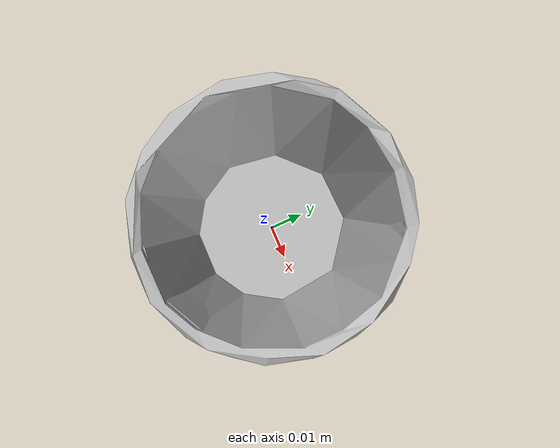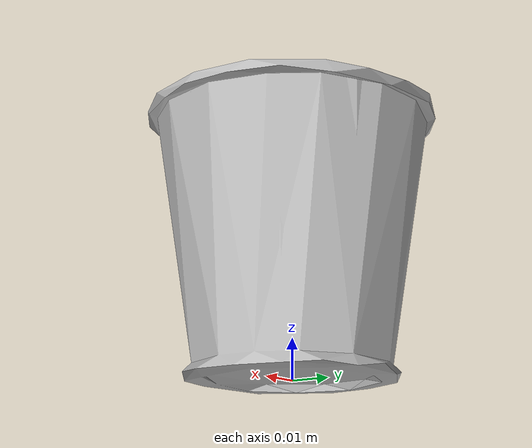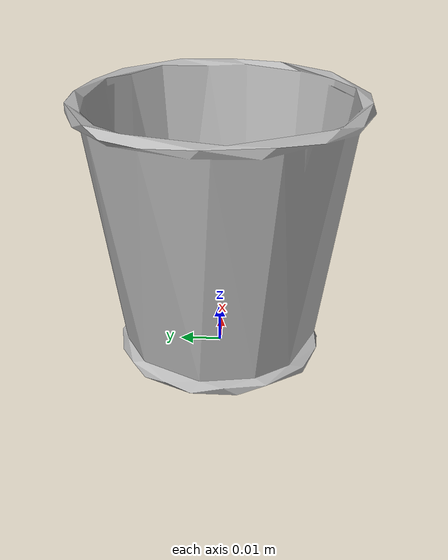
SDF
<?xml version='1.0' ?>
<sdf version='1.6'>
  <model name='table_2024'>
    <static>true</static>
    <link name='link'>
      <pose>0 0 0 0 0 0</pose>
      <collision name='collision'>
        <geometry>
          <mesh>
            <uri>meshes/model.dae</uri>
          </mesh>
        </geometry>
      </collision>
      <visual name='visual'>
        <geometry>
          <mesh>
            <uri>meshes/model.dae</uri>
          </mesh>
        </geometry>
      </visual>
    </link>
  </model>
</sdf>
